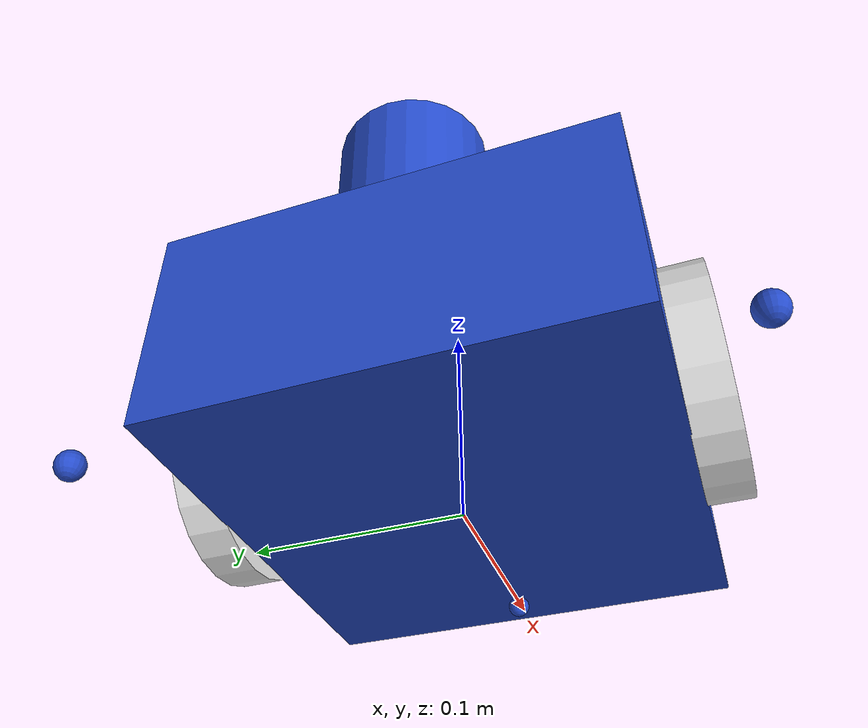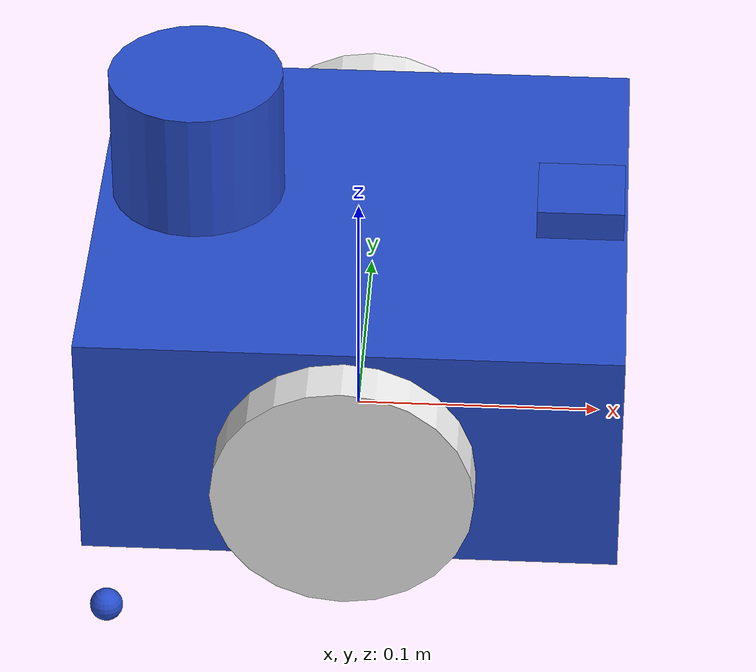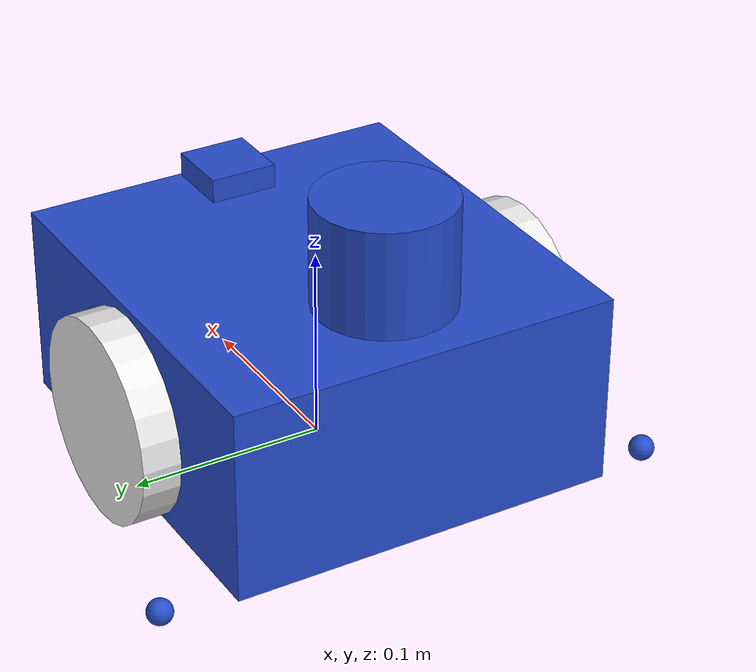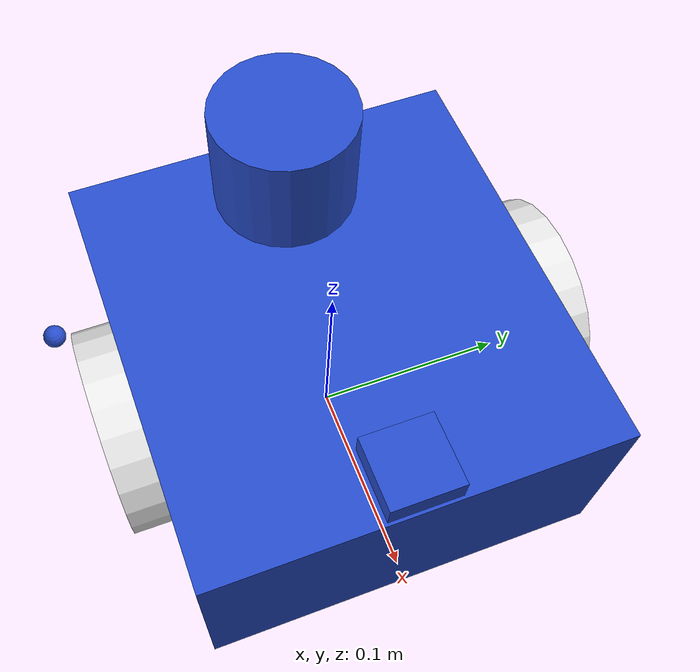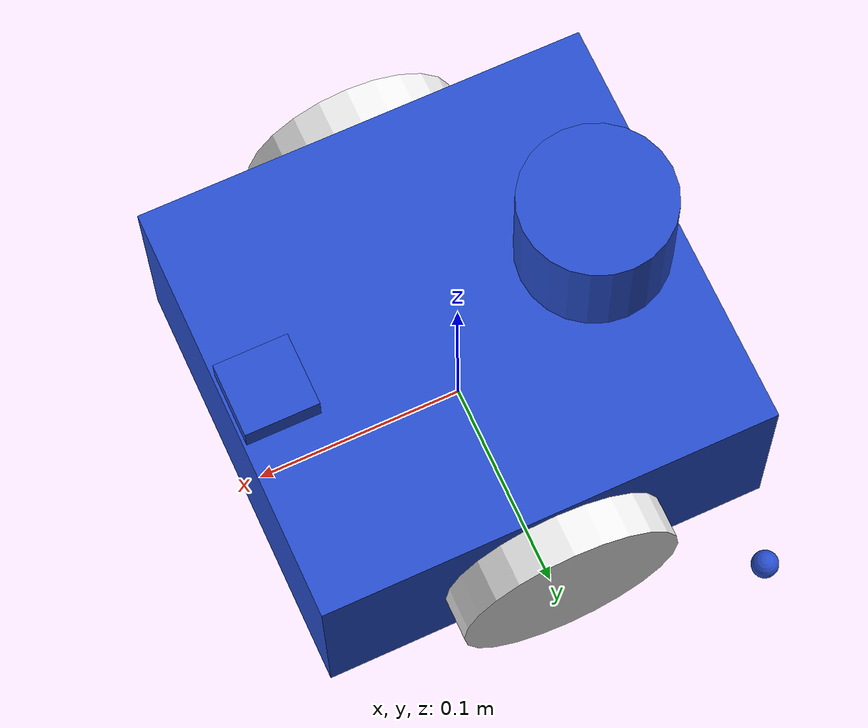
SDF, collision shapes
<sdf version='1.7'>
  <model name='tankbot'>
    <link name='base_link'>
      <inertial>
        <pose>-0.09324 0 0.013528 0 -0 0</pose>
        <mass>1.114</mass>
        <inertia>
          <ixx>0.00796325</ixx>
          <ixy>0</ixy>
          <ixz>0.00416478</ixz>
          <iyy>0.0286118</iyy>
          <iyz>0</iyz>
          <izz>0.0288767</izz>
        </inertia>
      </inertial>
      <collision name='base_link_fixed_joint_lump__chassis_collision'>
        <pose>0.0015 0 0.05 0 -0 0</pose>
        <geometry>
          <box>
            <size>0.215 0.201 0.1</size>
          </box>
        </geometry>
        <surface>
          <contact>
            <ode/>
          </contact>
          <friction>
            <ode/>
          </friction>
        </surface>
      </collision>
      <collision name='base_link_fixed_joint_lump__camera_frame_collision_1'>
        <pose>0.09 0 0.095 0 -0 0</pose>
        <geometry>
          <box>
            <size>0.035 0.035 0.035</size>
          </box>
        </geometry>
        <surface>
          <contact>
            <ode/>
          </contact>
          <friction>
            <ode/>
          </friction>
        </surface>
      </collision>
      <collision name='base_link_fixed_joint_lump__caster_wheel_back_left_collision_2'>
        <pose>-0.0925 0.1337 -0.002 0 -0 0</pose>
        <geometry>
          <sphere>
            <radius>0.0065</radius>
          </sphere>
        </geometry>
        <surface>
          <contact>
            <ode/>
          </contact>
          <friction>
            <ode>
              <mu>0.0001</mu>
              <mu2>0.0001</mu2>
            </ode>
          </friction>
        </surface>
      </collision>
      <collision name='base_link_fixed_joint_lump__caster_wheel_back_right_collision_3'>
        <pose>-0.0925 -0.1337 -0.002 0 -0 0</pose>
        <geometry>
          <sphere>
            <radius>0.0065</radius>
          </sphere>
        </geometry>
        <surface>
          <contact>
            <ode/>
          </contact>
          <friction>
            <ode>
              <mu>0.0001</mu>
              <mu2>0.0001</mu2>
            </ode>
          </friction>
        </surface>
      </collision>
      <collision name='base_link_fixed_joint_lump__caster_wheel_collision_4'>
        <pose>0.089 0 -0.0025 0 -0 0</pose>
        <geometry>
          <sphere>
            <radius>0.005</radius>
          </sphere>
        </geometry>
        <surface>
          <contact>
            <ode/>
          </contact>
          <friction>
            <ode>
              <mu>0.0001</mu>
              <mu2>0.0001</mu2>
            </ode>
          </friction>
        </surface>
      </collision>
      <collision name='base_link_fixed_joint_lump__laser_frame_collision_5'>
        <pose>-0.065 0 0.135 0 -0 0</pose>
        <geometry>
          <cylinder>
            <length>0.055</length>
            <radius>0.035</radius>
          </cylinder>
        </geometry>
        <surface>
          <contact>
            <ode/>
          </contact>
          <friction>
            <ode/>
          </friction>
        </surface>
      </collision>
      <visual name='base_link_fixed_joint_lump__chassis_visual'>
        <pose>0.00125 0 0.01 0 -0 0</pose>
        <geometry>
          <mesh>
            <scale>1 1 1</scale>
            <uri>model://tankbot/meshes/chassis.stl</uri>
          </mesh>
        </geometry>
        <material>
          <script>
            <name>Gazebo/Blue</name>
            <uri>file://media/materials/scripts/gazebo.material</uri>
          </script>
        </material>
      </visual>
      <visual name='base_link_fixed_joint_lump__camera_frame_visual_1'>
        <pose>0.001 0 0.01 0 -0 0</pose>
        <geometry>
          <mesh>
            <scale>1 1 1</scale>
            <uri>model://tankbot/meshes/camera.STL</uri>
          </mesh>
        </geometry>
        <material>
          <script>
            <name>Gazebo/White</name>
            <uri>file://media/materials/scripts/gazebo.material</uri>
          </script>
        </material>
      </visual>
      <visual name='base_link_fixed_joint_lump__caster_wheel_back_left_visual_2'>
        <pose>-0.0925 0.1337 -0.002 0 -0 0</pose>
        <geometry>
          <sphere>
            <radius>0.0065</radius>
          </sphere>
        </geometry>
        <material>
          <script>
            <name>Gazebo/Black</name>
            <uri>file://media/materials/scripts/gazebo.material</uri>
          </script>
        </material>
      </visual>
      <visual name='base_link_fixed_joint_lump__caster_wheel_back_right_visual_3'>
        <pose>-0.0925 -0.1337 -0.002 0 -0 0</pose>
        <geometry>
          <sphere>
            <radius>0.0065</radius>
          </sphere>
        </geometry>
        <material>
          <script>
            <name>Gazebo/Black</name>
            <uri>file://media/materials/scripts/gazebo.material</uri>
          </script>
        </material>
      </visual>
      <visual name='base_link_fixed_joint_lump__caster_wheel_visual_4'>
        <pose>0.089 0 -0.0025 0 -0 0</pose>
        <geometry>
          <sphere>
            <radius>0.005</radius>
          </sphere>
        </geometry>
        <material>
          <script>
            <name>Gazebo/Black</name>
            <uri>file://media/materials/scripts/gazebo.material</uri>
          </script>
        </material>
      </visual>
      <visual name='base_link_fixed_joint_lump__laser_frame_visual_5'>
        <pose>0.001 0 0.01 0 -0 0</pose>
        <geometry>
          <mesh>
            <scale>1 1 1</scale>
            <uri>model://tankbot/meshes/lidar.STL</uri>
          </mesh>
        </geometry>
        <material>
          <script>
            <name>Gazebo/Black</name>
            <uri>file://media/materials/scripts/gazebo.material</uri>
          </script>
        </material>
      </visual>
      <sensor name='camera' type='camera'>
        <visualize>1</visualize>
        <update_rate>10</update_rate>
        <camera>
          <horizontal_fov>1.089</horizontal_fov>
          <image>
            <format>R8G8B8</format>
            <width>640</width>
            <height>480</height>
          </image>
          <clip>
            <near>0.05</near>
            <far>8</far>
          </clip>
        </camera>
        <plugin name='camera_controller' filename='libgazebo_ros_camera.so'>
          <frame_name>camera_optical_link</frame_name>
        </plugin>
        <pose>0.095 0 0.095 0 -0 0</pose>
      </sensor>
      <sensor name='laser' type='ray'>
        <visualize>1</visualize>
        <update_rate>10</update_rate>
        <ray>
          <scan>
            <horizontal>
              <samples>360</samples>
              <min_angle>-3.14</min_angle>
              <max_angle>3.14</max_angle>
              <resolution>1</resolution>
            </horizontal>
          </scan>
          <range>
            <min>0.3</min>
            <max>12</max>
          </range>
        </ray>
        <plugin name='laser_controller' filename='libgazebo_ros_ray_sensor.so'>
          <ros>
            <argument>~/out:=scan</argument>
          </ros>
          <output_type>sensor_msgs/LaserScan</output_type>
          <frame_name>laser_frame</frame_name>
        </plugin>
        <pose>-0.065 0 0.165 0 -0 0</pose>
      </sensor>
    </link>
    <joint name='left_wheel_joint' type='revolute'>
      <pose relative_to='base_link'>0 0.105 0.044 -1.5708 0 0</pose>
      <parent>base_link</parent>
      <child>left_wheel</child>
      <axis>
        <xyz>0 0 1</xyz>
        <limit>
          <lower>-1e+16</lower>
          <upper>1e+16</upper>
        </limit>
        <dynamics>
          <spring_reference>0</spring_reference>
          <spring_stiffness>0</spring_stiffness>
        </dynamics>
      </axis>
    </joint>
    <link name='left_wheel'>
      <pose relative_to='left_wheel_joint'>0 0 0 0 -0 0</pose>
      <inertial>
        <pose>0 0 0 0 -0 0</pose>
        <mass>0.08</mass>
        <inertia>
          <ixx>5.67467e-05</ixx>
          <ixy>0</ixy>
          <ixz>0</ixz>
          <iyy>5.67467e-05</iyy>
          <iyz>0</iyz>
          <izz>0.00010816</izz>
        </inertia>
      </inertial>
      <collision name='left_wheel_collision'>
        <pose>0 0 0.005 0 -0 0</pose>
        <geometry>
          <cylinder>
            <length>0.02</length>
            <radius>0.052</radius>
          </cylinder>
        </geometry>
        <surface>
          <contact>
            <ode/>
          </contact>
          <friction>
            <ode/>
          </friction>
        </surface>
      </collision>
      <visual name='left_wheel_visual'>
        <pose>0 0 0 0 -0 0</pose>
        <geometry>
          <mesh>
            <scale>1 1 1</scale>
            <uri>model://tankbot/meshes/left_wheel_link.stl</uri>
          </mesh>
        </geometry>
        <material>
          <script>
            <name>Gazebo/White</name>
            <uri>file://media/materials/scripts/gazebo.material</uri>
          </script>
        </material>
      </visual>
    </link>
    <joint name='right_wheel_joint' type='revolute'>
      <pose relative_to='base_link'>0 -0.105 0.044 1.5708 -0 0</pose>
      <parent>base_link</parent>
      <child>right_wheel</child>
      <axis>
        <xyz>0 0 -1</xyz>
        <limit>
          <lower>-1e+16</lower>
          <upper>1e+16</upper>
        </limit>
        <dynamics>
          <spring_reference>0</spring_reference>
          <spring_stiffness>0</spring_stiffness>
        </dynamics>
      </axis>
    </joint>
    <link name='right_wheel'>
      <pose relative_to='right_wheel_joint'>0 0 0 0 -0 0</pose>
      <inertial>
        <pose>0 0 0 0 -0 0</pose>
        <mass>0.08</mass>
        <inertia>
          <ixx>5.67467e-05</ixx>
          <ixy>0</ixy>
          <ixz>0</ixz>
          <iyy>5.67467e-05</iyy>
          <iyz>0</iyz>
          <izz>0.00010816</izz>
        </inertia>
      </inertial>
      <collision name='right_wheel_collision'>
        <pose>0 0 0.005 0 -0 0</pose>
        <geometry>
          <cylinder>
            <length>0.02</length>
            <radius>0.052</radius>
          </cylinder>
        </geometry>
        <surface>
          <contact>
            <ode/>
          </contact>
          <friction>
            <ode/>
          </friction>
        </surface>
      </collision>
      <visual name='right_wheel_visual'>
        <pose>0 0 0 0 -0 0</pose>
        <geometry>
          <mesh>
            <scale>1 1 1</scale>
            <uri>model://tankbot/meshes/right_wheel_link.stl</uri>
          </mesh>
        </geometry>
        <material>
          <script>
            <name>Gazebo/White</name>
            <uri>file://media/materials/scripts/gazebo.material</uri>
          </script>
        </material>
      </visual>
    </link>
    <static>0</static>
    <plugin name='gazebo_ros2_control' filename='libgazebo_ros2_control.so'>
      <parameters>/home/amirbahador/Documents/tank_ws/install/tankbot/share/tankbot/config/gazebo_controller_tankbot.yaml</parameters>
    </plugin>
  </model>
</sdf>
